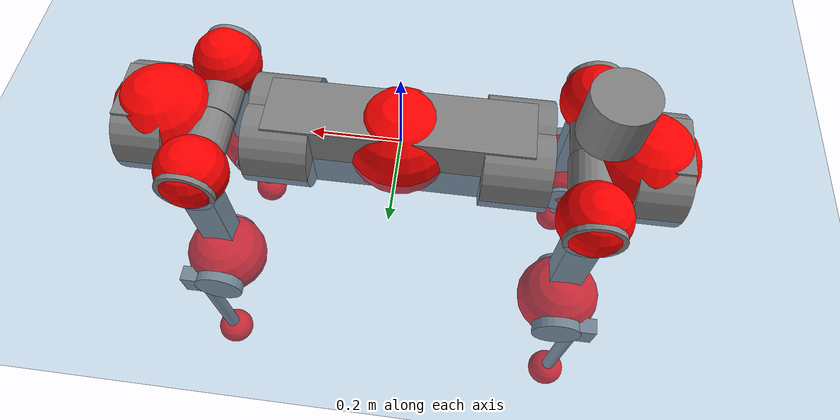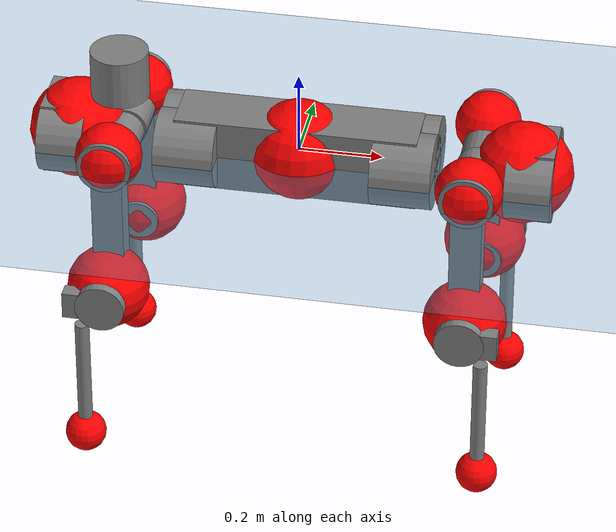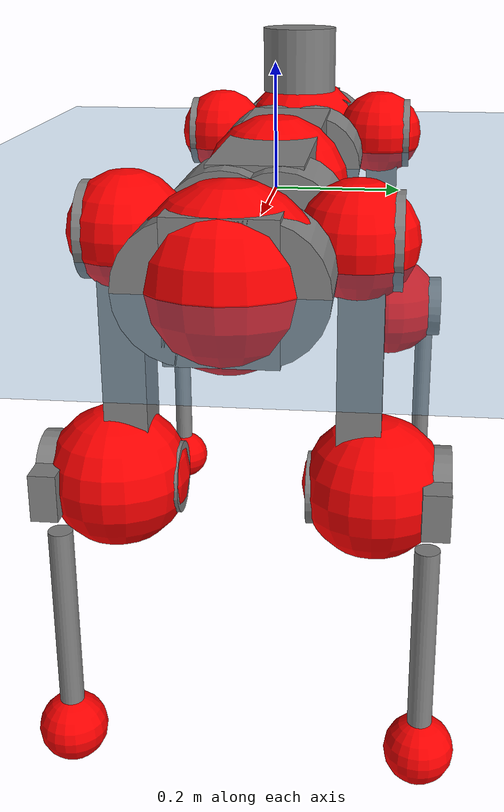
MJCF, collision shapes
<mujoco model="anymal_c">
  <compiler angle="radian" assetdir="assets" balanceinertia="true" inertiafromgeom="false"/>

  <option timestep="0.005" density="1.2" viscosity="2e-05"/>

  <size nkey="1"/>

  <visual>
    <quality shadowsize="8192"/>
    <map shadowclip="0.5"/>
  </visual>

  <default>
    <default class="/">
      <material specular="0" shininess="0.25"/>
      <geom contype="0" conaffinity="0" group="1" solref="-1000 -80"/>
      <site size="0.01 0.005 0.005" group="5"/>
      <general forcelimited="true" forcerange="-80 80" biastype="affine" gainprm="80" biasprm="0 -80 -2"/>
      <default class="anymal_c">
        <joint armature="0.01" damping="0.01" frictionloss="0.1"/>
        <default class="visual">
          <geom type="mesh" group="2"/>
          <default class="visual_zflip"/>
        </default>
        <default class="collision">
          <geom type="cylinder" group="3"/>
          <default class="foot">
            <geom size="0.03 0 0" type="sphere" condim="6" priority="1" friction="0.8 0.02 0.01" solimp="0.015 1 0.03"/>
          </default>
        </default>
      </default>
      <default class="reward_collision_sphere">
        <geom group="5" rgba="1 0 0 1"/>
      </default>
    </default>
  </default>

  <asset>
    <texture type="skybox" colorspace="auto" name="//unnamed_texture_0" builtin="gradient" rgb1="0.95 0.95 0.95" rgb2="0.95 0.95 0.95" width="100" height="600"/>
    <texture type="2d" colorspace="auto" name="texplane" builtin="checker" rgb1="0.345 0.575 0.748" rgb2="0.345 0.575 0.748" markrgb="1 1 1" width="512" height="512"/>
    <texture type="2d" colorspace="linear" name="base" file="base.png"/>
    <texture type="2d" colorspace="linear" name="top_shell" file="top_shell.png"/>
    <texture type="2d" colorspace="linear" name="bottom_shell" file="bottom_shell.png"/>
    <texture type="2d" colorspace="linear" name="remote" file="remote.png"/>
    <texture type="2d" colorspace="linear" name="hatch" file="hatch.png"/>
    <texture type="2d" colorspace="linear" name="handle" file="handle.png"/>
    <texture type="2d" colorspace="linear" name="face" file="face.png"/>
    <texture type="2d" colorspace="linear" name="battery" file="battery.png"/>
    <texture type="2d" colorspace="linear" name="lidar_cage" file="lidar_cage.png"/>
    <texture type="2d" colorspace="linear" name="depth_camera" file="depth_camera.png"/>
    <texture type="2d" colorspace="linear" name="wide_angle_camera" file="wide_angle_camera.png"/>
    <texture type="2d" colorspace="linear" name="lidar" file="lidar.png"/>
    <texture type="2d" colorspace="linear" name="drive" file="drive.png"/>
    <texture type="2d" colorspace="linear" name="hip_l" file="hip_l.png"/>
    <texture type="2d" colorspace="linear" name="shank_l" file="shank_l.png"/>
    <texture type="2d" colorspace="linear" name="foot" file="foot.png"/>
    <texture type="2d" colorspace="linear" name="thigh" file="thigh.png"/>
    <texture type="2d" colorspace="linear" name="shank_r" file="shank_r.png"/>
    <texture type="2d" colorspace="linear" name="hip_r" file="hip_r.png"/>
    <material name="MatPlane" class="/" texture="texplane" texuniform="true" texrepeat="2 2" specular="0.9" shininess="0.5"/>
    <material name="black_plastic" class="/" rgba="0.007 0.007 0.007 1"/>
    <material name="green" class="/" rgba="0.052 0.178 0.033 1"/>
    <material name="red" class="/" rgba="0.178 0.006 0.005 1"/>
    <material name="yellow" class="/" rgba="0.178 0.119 0.006 1"/>
    <material name="lwl" class="/" rgba="0.8 0.8 0.8 1"/>
    <material name="base" class="/" texture="base"/>
    <material name="top_shell" class="/" texture="top_shell"/>
    <material name="bottom_shell" class="/" texture="bottom_shell"/>
    <material name="hip_l" class="/" texture="hip_l"/>
    <material name="thigh" class="/" texture="thigh"/>
    <material name="shank_l" class="/" texture="shank_l"/>
    <material name="foot" class="/" texture="foot"/>
    <material name="hip_r" class="/" texture="hip_r"/>
    <material name="shank" class="/" texture="shank_r"/>
    <material name="hatch" class="/" texture="hatch"/>
    <material name="remote" class="/" texture="remote"/>
    <material name="handle" class="/" texture="handle"/>
    <material name="face" class="/" texture="face"/>
    <material name="depth_camera" class="/" texture="depth_camera"/>
    <material name="wide_angle_camera" class="/" texture="wide_angle_camera"/>
    <material name="battery" class="/" texture="battery"/>
    <material name="lidar_cage" class="/" texture="lidar_cage"/>
    <material name="lidar" class="/" texture="lidar"/>
    <material name="drive" class="/" texture="drive"/>
    <mesh name="base_0" class="/" file="base_0.obj"/>
    <mesh name="base_1" class="/" file="base_1.obj"/>
    <mesh name="base_2" class="/" file="base_2.obj"/>
    <mesh name="base_3" class="/" file="base_3.obj"/>
    <mesh name="base_4" class="/" file="base_4.obj"/>
    <mesh name="base_5" class="/" file="base_5.obj"/>
    <mesh name="top_shell" class="/" file="top_shell.obj"/>
    <mesh name="bottom_shell" class="/" file="bottom_shell.obj"/>
    <mesh name="remote" class="/" file="remote.obj"/>
    <mesh name="handle" class="/" file="handle.obj"/>
    <mesh name="face" class="/" file="face.obj"/>
    <mesh name="wide_angle_camera" class="/" file="wide_angle_camera.obj"/>
    <mesh name="depth_camera" class="/" file="depth_camera.obj"/>
    <mesh name="battery" class="/" file="battery.obj"/>
    <mesh name="lidar_cage" class="/" file="lidar_cage.obj"/>
    <mesh name="lidar" class="/" file="lidar.obj"/>
    <mesh name="drive" class="/" file="drive.obj"/>
    <mesh name="hip_l" class="/" file="hip_l.obj"/>
    <mesh name="thigh" class="/" file="thigh.obj"/>
    <mesh name="shank_l" class="/" file="shank_l.obj"/>
    <mesh name="foot" class="/" file="foot.obj"/>
    <mesh name="hip_r" class="/" file="hip_r.obj"/>
    <mesh name="hatch" class="/" file="hatch.obj"/>
    <mesh name="shank_r" class="/" file="shank_r.obj"/>
  </asset>

  <worldbody>
    <geom name="floor" class="/" size="100 100 0.125" type="plane" group="0" material="MatPlane"/>
    <light name="toplight_shadow" class="/" pos="0 0 5" dir="0.0990148 0.0990148 -0.990148" type="directional" ambient="0.04 0.04 0.04" diffuse="0.55 0.55 0.55" specular="0.12 0.12 0.12"/>
    <light name="toplight_fill" class="/" pos="0 0 5" dir="0.0990148 0.0990148 -0.990148" type="directional" castshadow="false" ambient="0.04 0.04 0.04" diffuse="0.3 0.3 0.3" specular="0.08 0.08 0.08"/>
    <body name="trunk" childclass="anymal_c" pos="0.00153582 0.000469707 0.000553842" quat="1 -0.000301293 0.000477904 0.000734348">
      <inertial pos="0.00436857 0.00284781 0.0623879" quat="0.494267 0.499578 0.508097 0.497955" mass="18.9824" diaginertia="1.42446 0.0357021 0.556302"/>
      <joint name="//unnamed_joint_0" type="free" armature="0" damping="0" frictionloss="0"/>
      <geom name="//unnamed_geom_1" class="visual" material="green" mesh="base_0"/>
      <geom name="//unnamed_geom_2" class="visual" material="yellow" mesh="base_1"/>
      <geom name="//unnamed_geom_3" class="visual" material="red" mesh="base_2"/>
      <geom name="//unnamed_geom_4" class="visual" material="black_plastic" mesh="base_3"/>
      <geom name="//unnamed_geom_5" class="visual" material="lwl" mesh="base_4"/>
      <geom name="//unnamed_geom_6" class="visual" material="base" mesh="base_5"/>
      <geom name="trunk_1" class="collision" size="0.287775 0.0694628 0.0893093" type="box"/>
      <geom name="trunk_2" class="collision" size="0.0893093 0.0719436" pos="0.256605 0.0399142 0" quat="0.707107 0 0.707107 0"/>
      <geom name="trunk_3" class="collision" size="0.0893093 0.0719436" pos="-0.256605 0.0399142 0" quat="0.707107 0 0.707107 0"/>
      <geom name="trunk_4" class="collision" size="0.0893093 0.0719436" pos="0.256605 -0.0399142 0" quat="0.707107 0 0.707107 0"/>
      <geom name="trunk_5" class="collision" size="0.0893093 0.0719436" pos="-0.256605 -0.0399142 0" quat="0.707107 0 0.707107 0"/>
      <geom name="//unnamed_geom_12" class="visual" material="top_shell" mesh="top_shell"/>
      <geom name="//unnamed_geom_13" class="visual" material="bottom_shell" mesh="bottom_shell"/>
      <geom name="//unnamed_geom_14" class="visual" material="remote" mesh="remote"/>
      <geom name="//unnamed_geom_15" class="visual" material="handle" mesh="handle"/>
      <geom name="//unnamed_geom_16" class="visual" pos="0.489025 0 0" quat="1 0 0 0" material="face" mesh="face"/>
      <geom name="trunk_6" class="collision" size="0.0545779 0.0694628 0.0893093" pos="0.553914 0 0" type="box"/>
      <geom name="//unnamed_geom_18" class="collision" size="0.0893093 0.0545779" pos="0.553914 0.0399142 0" quat="0.707107 0 0.707107 0"/>
      <geom name="//unnamed_geom_19" class="collision" size="0.0893093 0.0545779" pos="0.553914 -0.0399142 0" quat="0.707107 0 0.707107 0"/>
      <geom name="//unnamed_geom_20" class="visual" pos="0.544654 0 -0.0361864" quat="0.965926 0 0.258819 0" material="depth_camera" mesh="depth_camera"/>
      <geom name="//unnamed_geom_21" class="visual" pos="0.605235 0 0.0183679" material="wide_angle_camera" mesh="wide_angle_camera"/>
      <geom name="//unnamed_geom_22" class="visual_zflip" pos="-0.489025 0 0" quat="0 0 0 1" material="face" mesh="face"/>
      <geom name="trunk_7" class="collision" size="0.0545779 0.0694628 0.0893093" pos="-0.553914 0 0" quat="0 0 0 1" type="box"/>
      <geom name="//unnamed_geom_24" class="collision" size="0.0893093 0.0545779" pos="-0.553914 -0.0399142 0" quat="0 -0.707107 0 0.707107"/>
      <geom name="//unnamed_geom_25" class="collision" size="0.0893093 0.0545779" pos="-0.553914 0.0399142 0" quat="0 -0.707107 0 0.707107"/>
      <geom name="//unnamed_geom_26" class="visual" pos="-0.544654 0 -0.0361864" quat="0 -0.258819 0 0.965926" material="depth_camera" mesh="depth_camera"/>
      <geom name="//unnamed_geom_27" class="visual_zflip" pos="-0.605235 0 0.0183679" quat="0 0 0 1" material="wide_angle_camera" mesh="wide_angle_camera"/>
      <geom name="//unnamed_geom_28" class="visual" material="battery" mesh="battery"/>
      <geom name="//unnamed_geom_29" class="visual" pos="0 0.0356006 0.0352852" quat="0.683013 -0.183013 0.183013 0.683013" material="depth_camera" mesh="depth_camera"/>
      <geom name="//unnamed_geom_30" class="visual" pos="0 -0.0356006 0.0352852" quat="0.683013 0.183013 0.183013 -0.683013" material="depth_camera" mesh="depth_camera"/>
      <geom name="//unnamed_geom_31" class="visual" pos="-0.429445 0 0.090183" quat="1 0 0 0" material="lidar_cage" mesh="lidar_cage"/>
      <geom name="trunk_8" class="collision" size="0.0694628 0.0595396" pos="-0.429445 0 0.163802"/>
      <geom name="//unnamed_geom_33" class="visual" pos="-0.429445 -0.000239492 0.174477" quat="0.707107 0 0 -0.707107" material="lidar" mesh="lidar"/>
      <geom name="//unnamed_geom_34" class="visual" pos="0.35382 0.0595345 -1.13295e-08" quat="0.258819 0.965926 0 0" material="drive" mesh="drive"/>
      <geom name="//unnamed_geom_35" class="visual" pos="0.35382 -0.0595345 1.13295e-08" quat="0.258819 -0.965926 0 0" material="drive" mesh="drive"/>
      <geom name="//unnamed_geom_36" class="visual" pos="-0.35382 0.0595345 1.13295e-08" quat="0 0 0.965926 -0.258819" material="drive" mesh="drive"/>
      <geom name="//unnamed_geom_37" class="visual" pos="-0.35382 -0.0595345 -1.13295e-08" quat="0 0 -0.965926 -0.258819" material="drive" mesh="drive"/>
      <geom name="//unnamed_geom_38" class="visual" pos="0.136856 0 0.0895695" quat="1 0 0 0" material="hatch" mesh="hatch"/>
      <geom name="//unnamed_geom_39" class="reward_collision_sphere" size="0.119079"/>
      <geom name="//unnamed_geom_40" class="reward_collision_sphere" size="0.119079" pos="0.530908 0 0"/>
      <geom name="//unnamed_geom_41" class="reward_collision_sphere" size="0.119079" pos="-0.530908 0 0"/>
      <site name="imu" pos="0.317416 -0.00598578 0.042753" size="0.00992326"/>
      <camera name="track" pos="0 -1.14041 0" quat="0.707107 0.707107 0 0" mode="trackcom"/>
      <camera name="ego_camera" pos="0.530908 0 -0.0490792" quat="-0.5 -0.5 0.5 0.5"/>
      <body name="LF_HIP" pos="0.356686 0.0576336 -0.000208907" quat="0.258458 0.966022 0.000432902 -0.00013277">
        <inertial pos="0.0638464 -0.00977266 -0.0112963" quat="-0.128085 0.710655 -0.133544 0.678771" mass="2.8102" diaginertia="0.0139048 0.000296601 0.00935058"/>
        <joint name="LF_HAA" pos="0 0 0" axis="0.999988 0.00447198 0.00196221" range="-0.7434 0.50331" armature="0.00790905" damping="0.0285849" frictionloss="0.0870371"/>
        <geom name="//unnamed_geom_42" class="visual" pos="0 -0.000666461 0.000109466" quat="0.258819 -0.965926 0 0" material="hip_l" mesh="hip_l"/>
        <geom name="//unnamed_geom_43" class="visual" pos="0.0706697 -0.0778385 -0.049798" quat="0.183013 -0.683013 0.683013 0.183013" material="drive" mesh="drive"/>
        <geom name="//unnamed_geom_44" class="collision" size="0.0496163 0.0694628" pos="0.0706697 -0.00681952 -0.0084723" quat="-0.353553 -0.612372 0.612372 -0.353553"/>
        <body name="LF_THIGH" pos="0.0705826 -0.0437321 -0.0524334" quat="0.183202 -0.683315 0.68252 0.18353">
          <inertial pos="0.0382829 0.000670569 -0.304727" quat="0.99299 -0.00896837 -0.0727137 0.0927486" mass="3.04664" diaginertia="0.0728857 0.0018214 0.0114249"/>
          <joint name="LF_HFE" pos="0 0 0" axis="0.999732 0.010197 0.0207795" stiffness="0.0128818" range="-3.19692 3.18955" armature="0.0109734" damping="0" frictionloss="0.113168"/>
          <geom name="//unnamed_geom_45" class="visual" pos="0.0121285 1.91116e-05 0" quat="0.707107 0 0 -0.707107" material="thigh" mesh="thigh"/>
          <geom name="//unnamed_geom_46" class="collision" size="0.0645012 0.039693" pos="0.0471918 0 0" quat="0.5 0.5 -0.5 -0.5"/>
          <geom name="//unnamed_geom_47" class="collision" size="0.0372122 0.0297698 0.14023" pos="0.0353938 0 -0.173389" quat="0.707107 0 0 -0.707107" type="box"/>
          <geom name="//unnamed_geom_48" class="visual" pos="0.118333 0 -0.349689" quat="1 0 0 0" material="drive" mesh="drive"/>
          <geom name="//unnamed_geom_49" class="collision" size="0.0496163 0.0694628" pos="0.0357478 0 -0.349689" quat="0.707107 0 0.707107 0"/>
          <geom name="//unnamed_geom_50" class="reward_collision_sphere" size="0.0793861" pos="0.0294949 0 0"/>
          <body name="LF_SHANK" pos="0.116496 0.00204737 -0.345013" quat="1 -0.00028523 0.000839244 0.000138527">
            <inertial pos="0.00405273 -0.0351372 -0.101393" quat="0.991428 -0.126915 0.000190776 -0.0310314" mass="0.56543" diaginertia="0.0230474 0.000560157 0.00298349"/>
            <joint name="LF_KFE" pos="0 0 0" axis="0.999943 0.00961892 -0.00452811" range="-3.13574 3.17691" armature="0.0105117" damping="0.017685" frictionloss="0.0995918"/>
            <geom name="//unnamed_geom_51" class="visual" pos="0.00395483 0.0210874 0" quat="0.707107 0 0 -0.707107" material="shank_l" mesh="shank_l"/>
            <geom name="LF_kfe_act" class="collision" size="0.0595396 0.0198465" pos="0.0235959 0 0" quat="0.5 0.5 -0.5 -0.5"/>
            <geom name="//unnamed_geom_53" class="collision" size="0.0570577 0.033491 0.0188542" pos="0.0235959 -0.0327861 0" quat="0.5 0.5 -0.5 -0.5" type="box"/>
            <geom name="//unnamed_geom_54" class="visual" pos="0.0153954 -0.0433538 -0.414682" quat="0.382683 0 0 -0.92388" material="foot" mesh="foot"/>
            <geom name="LF_calf" class="collision" size="0.0173657 0.140168" pos="0.0153963 -0.0501494 -0.207341" quat="0.707107 0 0 -0.707107"/>
            <geom name="LF_foot" class="foot" size="0.0254264" pos="0.0153963 -0.0501494 -0.387075" quat="0.707107 0 0 -0.707107"/>
            <geom name="//unnamed_geom_57" class="reward_collision_sphere" size="0.0992326" pos="-0.0589897 0 0"/>
            <geom name="//unnamed_geom_58" class="reward_collision_sphere" size="0.0496163" pos="0.0153963 -0.0501494 -0.387075"/>
            <site name="LF_foot" class="foot" pos="0.0153963 -0.0501494 -0.387075" quat="0.707107 0 0 -0.707107" size="0.00992326"/>
          </body>
        </body>
      </body>
      <body name="RF_HIP" pos="0.354127 -0.0592615 0.00137054" quat="0.258888 -0.965907 -3.02463e-05 7.06537e-05">
        <inertial pos="0.0643025 0.00749055 -0.00895092" quat="0.136676 0.677974 0.129617 0.710542" mass="2.63633" diaginertia="0.0131488 0.000299507 0.00917756"/>
        <joint name="RF_HAA" pos="0 0 0" axis="0.999934 0.0059583 0.00980302" range="-0.426377 0.76505" armature="0.0112364" damping="0.0147979" frictionloss="0.113736"/>
        <geom name="//unnamed_geom_59" class="visual" pos="0 0.000666456 0.000109465" quat="0.258819 0.965926 0 0" material="hip_r" mesh="hip_r"/>
        <geom name="//unnamed_geom_60" class="visual" pos="0.0706697 0.0778385 -0.049798" quat="0.183013 0.683013 0.683013 -0.183013" material="drive" mesh="drive"/>
        <geom name="//unnamed_geom_61" class="collision" size="0.0496163 0.0694628" pos="0.0706697 0.00681952 -0.0084723" quat="-0.353553 0.612372 0.612372 0.353553"/>
        <body name="RF_THIGH" pos="0.069263 0.0377527 -0.0529248" quat="0.182352 0.682498 0.683739 -0.182878">
          <inertial pos="0.0370354 0.00233654 -0.303146" quat="0.992213 -0.0162065 -0.0865747 0.0880628" mass="3.19465" diaginertia="0.0717003 0.00183244 0.0120385"/>
          <joint name="RF_HFE" pos="0 0 0" axis="0.999971 0.00304663 0.00699311" stiffness="0.00478041" range="-3.23368 3.13596" armature="0.0095334" damping="0.0109657" frictionloss="0.0708692"/>
          <geom name="//unnamed_geom_62" class="visual" pos="0.0121285 1.91116e-05 0" quat="0.707107 0 0 -0.707107" material="thigh" mesh="thigh"/>
          <geom name="//unnamed_geom_63" class="collision" size="0.0645012 0.039693" pos="0.0471918 0 0" quat="0.5 0.5 0.5 0.5"/>
          <geom name="//unnamed_geom_64" class="collision" size="0.0372122 0.0297698 0.14023" pos="0.0353938 0 -0.173389" quat="0.707107 0 0 0.707107" type="box"/>
          <geom name="//unnamed_geom_65" class="visual" pos="0.118333 0 -0.349689" quat="1 0 0 0" material="drive" mesh="drive"/>
          <geom name="//unnamed_geom_66" class="collision" size="0.0496163 0.0694628" pos="0.0357478 0 -0.349689" quat="0.707107 0 0.707107 0"/>
          <geom name="//unnamed_geom_67" class="reward_collision_sphere" size="0.0793861" pos="0.0294949 0 0"/>
          <body name="RF_SHANK" pos="0.115439 0.00369334 -0.347363" quat="1 0.000177634 0.000568946 -4.15105e-05">
            <inertial pos="0.0076366 0.0341669 -0.10247" quat="0.992954 0.116118 0.00092424 0.0236346" mass="0.559621" diaginertia="0.02458 0.000569855 0.00315126"/>
            <joint name="RF_KFE" pos="0 0 0" axis="0.999993 0.00259311 -0.00251205" range="-3.1475 3.139" armature="0.00877349" damping="0.0176891" frictionloss="0.120104"/>
            <geom name="//unnamed_geom_68" class="visual" pos="0.00395481 -0.0210873 0" quat="0.707107 0 0 0.707107" material="shank" mesh="shank_r"/>
            <geom name="RF_kfe_act" class="collision" size="0.0595396 0.0198465" pos="0.0235959 0 0" quat="0.5 0.5 0.5 0.5"/>
            <geom name="//unnamed_geom_70" class="collision" size="0.0570577 0.033491 0.0188542" pos="0.0235959 0.0327861 0" quat="0.5 0.5 0.5 0.5" type="box"/>
            <geom name="//unnamed_geom_71" class="visual" pos="0.0153973 0.0433538 -0.414682" quat="0.382683 0 0 0.92388" material="foot" mesh="foot"/>
            <geom name="RF_calf" class="collision" size="0.0173657 0.140168" pos="0.0153963 0.0501494 -0.207341" quat="0.707107 0 0 0.707107"/>
            <geom name="RF_foot" class="foot" size="0.035899" pos="0.0153963 0.0501494 -0.387075" quat="0.707107 0 0 0.707107"/>
            <geom name="//unnamed_geom_74" class="reward_collision_sphere" size="0.0992326" pos="-0.0589897 0 0"/>
            <geom name="//unnamed_geom_75" class="reward_collision_sphere" size="0.0496163" pos="0.0153963 0.0501494 -0.387075"/>
            <site name="RF_foot" class="foot" pos="0.0153963 0.0501494 -0.387075" quat="0.707107 0 0 0.707107" size="0.00992326"/>
          </body>
        </body>
      </body>
      <body name="LH_HIP" pos="-0.349251 0.0613203 0.00213808" quat="-0.000745796 -0.00113675 0.965845 -0.259115">
        <inertial pos="0.0684957 0.00539639 -0.00936834" quat="0.134191 0.678554 0.127938 0.710766" mass="2.75706" diaginertia="0.013407 0.000288729 0.00974809"/>
        <joint name="LH_HAA" pos="0 0 0" axis="0.999928 -0.00587019 0.0104426" range="-0.452848 0.835161" armature="0.0115823" damping="0.00111304" frictionloss="0.0967453"/>
        <geom name="//unnamed_geom_76" class="visual" pos="0 0.000666456 0.000109465" quat="-0.258819 -0.965926 0 0" material="hip_r" mesh="hip_r"/>
        <geom name="//unnamed_geom_77" class="visual" pos="0.0706697 0.0778385 -0.049798" quat="0.183013 0.683013 0.683013 -0.183013" material="drive" mesh="drive"/>
        <geom name="//unnamed_geom_78" class="collision" size="0.0496163 0.0694628" pos="0.0706697 0.00681952 -0.0084723" quat="-0.353553 0.612372 0.612372 0.353553"/>
        <body name="LH_THIGH" pos="0.0705289 0.0468527 -0.0548648" quat="0.183185 0.682834 0.683087 -0.183232">
          <inertial pos="0.0366692 -0.00185756 -0.303521" quat="0.992174 -0.00935517 -0.0815383 0.094098" mass="2.98877" diaginertia="0.0690235 0.00179581 0.0119899"/>
          <joint name="LH_HFE" pos="0 0 0" axis="0.99995 0.00806687 0.00587663" range="-3.15298 3.10187" armature="0.0093508" damping="0" frictionloss="0.109955"/>
          <geom name="//unnamed_geom_79" class="visual" pos="0.0121285 1.91116e-05 0" quat="0.707107 0 0 -0.707107" material="thigh" mesh="thigh"/>
          <geom name="//unnamed_geom_80" class="collision" size="0.0645012 0.039693" pos="0.0471918 0 0" quat="0.5 0.5 -0.5 -0.5"/>
          <geom name="//unnamed_geom_81" class="collision" size="0.0372122 0.0297698 0.14023" pos="0.0353938 0 -0.173389" quat="0.707107 0 0 -0.707107" type="box"/>
          <geom name="//unnamed_geom_82" class="visual" pos="0.118333 0 -0.349689" quat="1 0 0 0" material="drive" mesh="drive"/>
          <geom name="//unnamed_geom_83" class="collision" size="0.0496163 0.0694628" pos="0.0357478 0 -0.349689" quat="0.707107 0 0.707107 0"/>
          <geom name="//unnamed_geom_84" class="reward_collision_sphere" size="0.0793861" pos="0.0294949 0 0"/>
          <body name="LH_SHANK" pos="0.118631 -0.000654663 -0.351612" quat="1 -0.000763544 0.00052291 -0.000354176">
            <inertial pos="0.00637167 0.0343578 -0.0986979" quat="0.995544 0.0929605 -0.00978736 0.0124668" mass="0.567646" diaginertia="0.0233016 0.000564692 0.00326745"/>
            <joint name="LH_KFE" pos="0 0 0" axis="0.999986 -0.00522784 -0.000310942" stiffness="0.000356597" range="-3.11906 3.14659" armature="0.0105379" damping="0.0101005" frictionloss="0.0985267"/>
            <geom name="//unnamed_geom_85" class="visual" pos="0.00395481 -0.0210873 0" quat="-0.707107 0 0 -0.707107" material="shank" mesh="shank_r"/>
            <geom name="LH_kfe_act" class="collision" size="0.0595396 0.0198465" pos="0.0235959 0 0" quat="0.5 0.5 -0.5 -0.5"/>
            <geom name="//unnamed_geom_87" class="collision" size="0.0570577 0.033491 0.0188542" pos="0.0235959 0.0327861 0" quat="0.5 0.5 -0.5 -0.5" type="box"/>
            <geom name="//unnamed_geom_88" class="visual" pos="0.0153973 0.0433538 -0.414682" quat="-0.382683 0 0 -0.92388" material="foot" mesh="foot"/>
            <geom name="LH_calf" class="collision" size="0.0173657 0.140168" pos="0.0153963 0.0501494 -0.207341" quat="0.707107 0 0 -0.707107"/>
            <geom name="LH_foot" class="foot" size="0.0217536" pos="0.0153963 0.0501494 -0.387075" quat="0.707107 0 0 -0.707107"/>
            <geom name="//unnamed_geom_91" class="reward_collision_sphere" size="0.0992326" pos="-0.0589897 0 0"/>
            <geom name="//unnamed_geom_92" class="reward_collision_sphere" size="0.0496163" pos="0.0153963 0.0501494 -0.387075"/>
            <site name="LH_foot" class="foot" pos="0.0153963 0.0501494 -0.387075" quat="0.707107 0 0 -0.707107" size="0.00992326"/>
          </body>
        </body>
      </body>
      <body name="RH_HIP" pos="-0.353751 -0.0560435 -0.00175947" quat="0.000166288 -0.000550947 -0.966012 -0.258497">
        <inertial pos="0.0703477 -0.00846102 -0.0127294" quat="-0.117071 0.713739 -0.138466 0.676534" mass="2.68966" diaginertia="0.0130552 0.000290701 0.00949672"/>
        <joint name="RH_HAA" pos="0 0 0" axis="0.999994 -0.00332613 0.00117901" range="-0.677324 0.400073" armature="0.0105742" damping="0.0111397" frictionloss="0.0952489"/>
        <geom name="//unnamed_geom_93" class="visual" pos="0 -0.000666461 0.000109466" quat="-0.258819 0.965926 0 0" material="hip_l" mesh="hip_l"/>
        <geom name="//unnamed_geom_94" class="visual" pos="0.0706697 -0.0778385 -0.049798" quat="-0.183013 0.683013 -0.683013 -0.183013" material="drive" mesh="drive"/>
        <geom name="//unnamed_geom_95" class="collision" size="0.0496163 0.0694628" pos="0.0706697 -0.00681952 -0.0084723" quat="0.353553 0.612372 -0.612372 0.353553"/>
        <body name="RH_THIGH" pos="0.0721567 -0.0427987 -0.0548835" quat="-0.182979 0.683029 -0.683002 -0.183024">
          <inertial pos="0.0357631 -0.00274066 -0.299092" quat="0.993043 -0.00365927 -0.0810753 0.085318" mass="3.37388" diaginertia="0.0759191 0.00192912 0.0127969"/>
          <joint name="RH_HFE" pos="0 0 0" axis="0.999954 -0.00902936 -0.00311405" range="-3.12125 3.12619" armature="0.00901826" damping="0" frictionloss="0.0952045"/>
          <geom name="//unnamed_geom_96" class="visual" pos="0.0121285 1.91116e-05 0" quat="0.707107 0 0 -0.707107" material="thigh" mesh="thigh"/>
          <geom name="//unnamed_geom_97" class="collision" size="0.0645012 0.039693" pos="0.0471918 0 0" quat="0.5 0.5 0.5 0.5"/>
          <geom name="//unnamed_geom_98" class="collision" size="0.0372122 0.0297698 0.14023" pos="0.0353938 0 -0.173389" quat="0.707107 0 0 0.707107" type="box"/>
          <geom name="//unnamed_geom_99" class="visual" pos="0.118333 0 -0.349689" quat="1 0 0 0" material="drive" mesh="drive"/>
          <geom name="//unnamed_geom_100" class="collision" size="0.0496163 0.0694628" pos="0.0357478 0 -0.349689" quat="0.707107 0 0.707107 0"/>
          <geom name="//unnamed_geom_101" class="reward_collision_sphere" size="0.0793861" pos="0.0294949 0 0"/>
          <body name="RH_SHANK" pos="0.121475 -0.00273624 -0.347681" quat="1 -0.000161722 0.000383913 0.00031909">
            <inertial pos="0.00467189 -0.0346322 -0.0979944" quat="0.992661 -0.115415 -0.00510507 -0.0357426" mass="0.598595" diaginertia="0.023415 0.000551889 0.00318204"/>
            <joint name="RH_KFE" pos="0 0 0" axis="0.999803 -0.0116793 -0.0160768" range="-3.16496 3.09016" armature="0.011996" damping="0.0190417" frictionloss="0.100091"/>
            <geom name="//unnamed_geom_102" class="visual" pos="0.00395483 0.0210874 0" quat="0.707107 0 0 -0.707107" material="shank_l" mesh="shank_l"/>
            <geom name="RH_kfe_act" class="collision" size="0.0595396 0.0198465" pos="0.0235959 0 0" quat="0.5 0.5 0.5 0.5"/>
            <geom name="//unnamed_geom_104" class="collision" size="0.0570577 0.033491 0.0188542" pos="0.0235959 -0.0327861 0" quat="0.5 0.5 0.5 0.5" type="box"/>
            <geom name="//unnamed_geom_105" class="visual" pos="0.0153954 -0.0433538 -0.414682" quat="0.382683 0 0 -0.92388" material="foot" mesh="foot"/>
            <geom name="RH_calf" class="collision" size="0.0173657 0.140168" pos="0.0153963 -0.0501494 -0.207341" quat="0.707107 0 0 0.707107"/>
            <geom name="RH_foot" class="foot" size="0.0298043" pos="0.0153963 -0.0501494 -0.387075" quat="0.707107 0 0 0.707107"/>
            <geom name="//unnamed_geom_108" class="reward_collision_sphere" size="0.0992326" pos="-0.0589897 0 0"/>
            <geom name="//unnamed_geom_109" class="reward_collision_sphere" size="0.0496163" pos="0.0153963 -0.0501494 -0.387075"/>
            <site name="RH_foot" class="foot" pos="0.0153963 -0.0501494 -0.387075" quat="0.707107 0 0 0.707107" size="0.00992326"/>
          </body>
        </body>
      </body>
    </body>
  </worldbody>

  <contact>
    <pair class="/" geom1="floor" geom2="LF_foot" name="//unnamed_contact_0"/>
    <pair class="/" geom1="floor" geom2="RF_foot" name="//unnamed_contact_1"/>
    <pair class="/" geom1="floor" geom2="LH_foot" name="//unnamed_contact_2"/>
    <pair class="/" geom1="floor" geom2="RH_foot" name="//unnamed_contact_3"/>
  </contact>

  <actuator>
    <general name="LF_HAA" class="/" joint="LF_HAA" forcerange="-73.8971 73.8971" gainprm="60.7501" biasprm="0 -60.7501 -1.91821"/>
    <general name="LF_HFE" class="/" joint="LF_HFE" forcerange="-77.4331 77.4331" gainprm="60.7501" biasprm="0 -60.7501 -1.91821"/>
    <general name="LF_KFE" class="/" joint="LF_KFE" forcerange="-75.0597 75.0597" gainprm="60.7501" biasprm="0 -60.7501 -1.91821"/>
    <general name="RF_HAA" class="/" joint="RF_HAA" forcerange="-79.2065 79.2065" gainprm="60.7501" biasprm="0 -60.7501 -1.91821"/>
    <general name="RF_HFE" class="/" joint="RF_HFE" forcerange="-84.9976 84.9976" gainprm="60.7501" biasprm="0 -60.7501 -1.91821"/>
    <general name="RF_KFE" class="/" joint="RF_KFE" forcerange="-87.2256 87.2256" gainprm="60.7501" biasprm="0 -60.7501 -1.91821"/>
    <general name="LH_HAA" class="/" joint="LH_HAA" forcerange="-79.9184 79.9184" gainprm="60.7501" biasprm="0 -60.7501 -1.91821"/>
    <general name="LH_HFE" class="/" joint="LH_HFE" forcerange="-87.8082 87.8082" gainprm="60.7501" biasprm="0 -60.7501 -1.91821"/>
    <general name="LH_KFE" class="/" joint="LH_KFE" forcerange="-76.1007 76.1007" gainprm="60.7501" biasprm="0 -60.7501 -1.91821"/>
    <general name="RH_HAA" class="/" joint="RH_HAA" forcerange="-73.0919 73.0919" gainprm="60.7501" biasprm="0 -60.7501 -1.91821"/>
    <general name="RH_HFE" class="/" joint="RH_HFE" forcerange="-91.8735 91.8735" gainprm="60.7501" biasprm="0 -60.7501 -1.91821"/>
    <general name="RH_KFE" class="/" joint="RH_KFE" forcerange="-73.4025 73.4025" gainprm="60.7501" biasprm="0 -60.7501 -1.91821"/>
  </actuator>

  <sensor>
    <gyro site="imu" name="imu_angular_velocity"/>
    <velocimeter site="imu" name="imu_linear_velocity"/>
    <framelinvel objtype="site" objname="LF_foot" name="LF_foot_global_linear_velocity"/>
    <framelinvel objtype="site" objname="RF_foot" name="RF_foot_global_linear_velocity"/>
    <framelinvel objtype="site" objname="LH_foot" name="LH_foot_global_linear_velocity"/>
    <framelinvel objtype="site" objname="RH_foot" name="RH_foot_global_linear_velocity"/>
  </sensor>

  <keyframe>
    <key name="home" qpos="0 0 0.55 1 0 0 0 0 0.4 -0.8 0 -0.4 0.8 0 -0.4 0.8 0 0.4 -0.8"/>
  </keyframe>
</mujoco>
